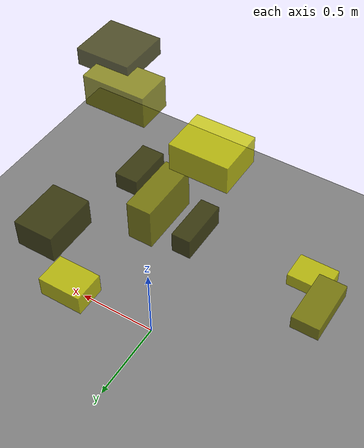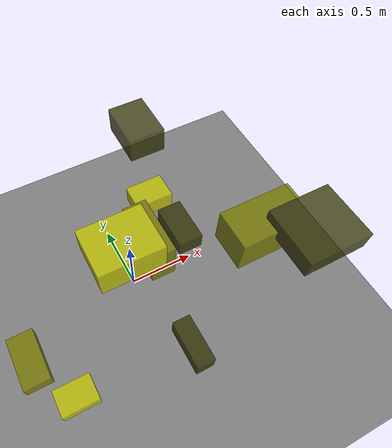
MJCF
<?xml version="1.0"?>
<mujoco model="obstacle_scene">
  <compiler angle="radian" coordinate="local"/>
  <option timestep="0.001" gravity="0 0 -9.81"/>

  <asset>
    <material name="obstacle_mat" rgba="0.8 0.8 0.0 0.8"/>
    <material name="ground_mat" rgba="0.5 0.5 0.5 1"/>
  </asset>

  <worldbody>
    <!-- Ground plane -->
    <geom name="ground" type="plane" size="3 3 0.1" material="ground_mat"/>

    <!-- Obstacles -->
    <body name="obstacle_0" pos="0.268735 0.371581 1.136707">
      <geom name="obs_0" type="box" size="0.108245 0.147334 0.076421" rgba="0.2 0.2 0.0 0.8"/>
    </body>
    <body name="obstacle_1" pos="0.053046 -0.208189 0.872875">
      <geom name="obs_1" type="box" size="0.073235 0.186682 0.125536" rgba="0.5 0.5 0.0 0.8"/>
    </body>
    <body name="obstacle_2" pos="-0.169861 -0.378970 1.215158">
      <geom name="obs_2" type="box" size="0.171741 0.136650 0.084694" rgba="0.8 0.8 0.0 0.8"/>
    </body>
    <body name="obstacle_3" pos="0.123872 -0.698011 0.175798">
      <geom name="obs_3" type="box" size="0.066212 0.175439 0.075800" rgba="0.2 0.2 0.0 0.8"/>
    </body>
    <body name="obstacle_4" pos="-0.866423 -0.383384 0.408798">
      <geom name="obs_4" type="box" size="0.085130 0.174148 0.046124" rgba="0.5 0.5 0.0 0.8"/>
    </body>
    <body name="obstacle_5" pos="0.302349 0.298262 0.553847">
      <geom name="obs_5" type="box" size="0.131938 0.093719 0.063110" rgba="0.8 0.8 0.0 0.8"/>
    </body>
    <body name="obstacle_6" pos="0.664212 -0.751491 1.300016">
      <geom name="obs_6" type="box" size="0.169856 0.160821 0.053557" rgba="0.2 0.2 0.0 0.8"/>
    </body>
    <body name="obstacle_7" pos="0.509300 -0.576710 1.199307">
      <geom name="obs_7" type="box" size="0.196150 0.109540 0.099078" rgba="0.5 0.5 0.0 0.8"/>
    </body>
    <body name="obstacle_8" pos="-0.702600 -0.672442 0.249161">
      <geom name="obs_8" type="box" size="0.125387 0.090833 0.044163" rgba="0.8 0.8 0.0 0.8"/>
    </body>
    <body name="obstacle_9" pos="0.213036 -0.274606 0.986169">
      <geom name="obs_9" type="box" size="0.067229 0.129193 0.050107" rgba="0.2 0.2 0.0 0.8"/>
    </body>
  </worldbody>
</mujoco>
